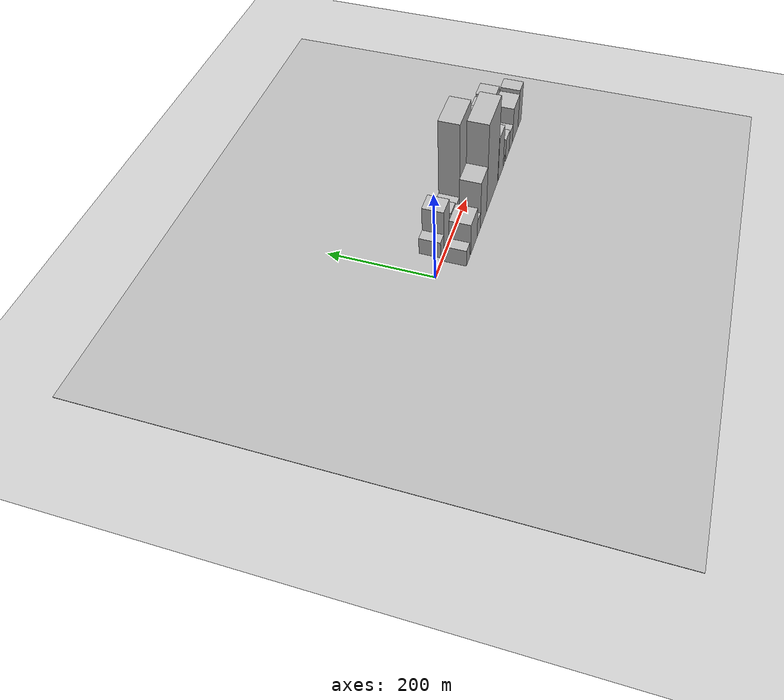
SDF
<?xml version="1.0" encoding="utf-8"?>

<sdf version="1.6">

   <world name="default">

      <gui fullscreen="0">

         <camera name="user_camera">

            <pose>-15 0 4.57585 0 0 0</pose>

            <view_controller>orbit</view_controller>

         </camera>

      </gui>

      <scene>

         <sky>

           <clouds>

             <speed>12</speed>

           </clouds>

         </sky>

         <ambient>0.4 0.4 0.4 1</ambient>

         <background>0.7 0.7 0.7 1</background>

         <shadows>1</shadows>

      </scene>

      <gravity>0 0 -9.8066</gravity>

      <magnetic_field>6e-06 2.3e-05 -4.2e-05</magnetic_field>

      <physics default="0" name="default_physics" type="ode">

         <ode>

            <solver>

               <type>quick</type>

               <iters>10</iters>

               <sor>1.0</sor>

               <use_dynamic_moi_rescaling>0</use_dynamic_moi_rescaling>

            </solver>

            <constraints>

               <cfm>0</cfm>

               <erp>0.2</erp>

               <contact_max_correcting_vel>100</contact_max_correcting_vel>

               <contact_surface_layer>0.001</contact_surface_layer>

            </constraints>

         </ode>

         <max_step_size>0.004</max_step_size>

         <real_time_factor>1</real_time_factor>

         <real_time_update_rate>250</real_time_update_rate>

      </physics>

      <light name="sun" type="directional">

         <cast_shadows>1</cast_shadows>

         <pose>0 0 10 0 0 0</pose>

         <diffuse>0.8 0.8 0.8 1</diffuse>

         <specular>0.2 0.2 0.2 1</specular>

         <attenuation>

            <range>1000</range>

            <constant>0.9</constant>

            <linear>0.01</linear>

            <quadratic>0.001</quadratic>

         </attenuation>

         <direction>-0.5 0.1 -0.9</direction>

      </light>

      <include>

         <name>ground_plane_1</name>

         <uri>model://HANNAS_ground_plane</uri>

         <pose>0 0 0  0 0 0</pose>

      </include>

      <include>

         <name>ground_plane_2</name>

         <uri>model://HANNAS_ground_plane</uri>

         <pose>100 0 0  0 0 0</pose>

      </include>

      <model name="building_1">

         <static>1</static>

         <pose frame="">56.5789 24.5000 0 0.000000 0.000000 1.570796</pose>

         <link name="link">

            <pose frame="">0 0 19.50 0 0 0</pose>

            <collision name="collision">

               <geometry>

                  <box>

                     <size>40.0000 21.1579 39.0000</size>

                  </box>

               </geometry>

               <max_contacts>10</max_contacts>

               <surface>

                  <contact>

                     <ode/>

                  </contact>

                  <bounce/>

                  <friction>

                     <torsional>

                        <ode/>

                     </torsional>

                     <ode/>

                  </friction>

               </surface>

            </collision>

            <visual name="visual">

               <cast_shadows>0</cast_shadows>

               <geometry>

                  <box>

                     <size>40.0000 21.1579 39.0000</size>

                  </box>

               </geometry>

               <material>

                  <script>

                     <uri>model://HANNAS_wall/materials/scripts</uri>

                     <uri>model://HANNAS_wall/materials/textures</uri>

                     <name>vrc/HANNAS_wall</name>

                  </script>

               </material>

            </visual>

            <self_collide>0</self_collide>

            <enable_wind>0</enable_wind>

            <kinematic>0</kinematic>

         </link>

      </model>

      <model name="building_2">

         <static>1</static>

         <pose frame="">84.7303 24.5000 0 0.000000 0.000000 1.570796</pose>

         <link name="link">

            <pose frame="">0 0 46.50 0 0 0</pose>

            <collision name="collision">

               <geometry>

                  <box>

                     <size>40.0000 35.1449 93.0000</size>

                  </box>

               </geometry>

               <max_contacts>10</max_contacts>

               <surface>

                  <contact>

                     <ode/>

                  </contact>

                  <bounce/>

                  <friction>

                     <torsional>

                        <ode/>

                     </torsional>

                     <ode/>

                  </friction>

               </surface>

            </collision>

            <visual name="visual">

               <cast_shadows>0</cast_shadows>

               <geometry>

                  <box>

                     <size>40.0000 35.1449 93.0000</size>

                  </box>

               </geometry>

               <material>

                  <script>

                     <uri>model://HANNAS_wall/materials/scripts</uri>

                     <uri>model://HANNAS_wall/materials/textures</uri>

                     <name>vrc/HANNAS_wall</name>

                  </script>

               </material>

            </visual>

            <self_collide>0</self_collide>

            <enable_wind>0</enable_wind>

            <kinematic>0</kinematic>

         </link>

      </model>

      <model name="building_3">

         <static>1</static>

         <pose frame="">106.9715 24.5000 0 0.000000 0.000000 1.570796</pose>

         <link name="link">

            <pose frame="">0 0 10.50 0 0 0</pose>

            <collision name="collision">

               <geometry>

                  <box>

                     <size>40.0000 9.3375 21.0000</size>

                  </box>

               </geometry>

               <max_contacts>10</max_contacts>

               <surface>

                  <contact>

                     <ode/>

                  </contact>

                  <bounce/>

                  <friction>

                     <torsional>

                        <ode/>

                     </torsional>

                     <ode/>

                  </friction>

               </surface>

            </collision>

            <visual name="visual">

               <cast_shadows>0</cast_shadows>

               <geometry>

                  <box>

                     <size>40.0000 9.3375 21.0000</size>

                  </box>

               </geometry>

               <material>

                  <script>

                     <uri>model://HANNAS_wall/materials/scripts</uri>

                     <uri>model://HANNAS_wall/materials/textures</uri>

                     <name>vrc/HANNAS_wall</name>

                  </script>

               </material>

            </visual>

            <self_collide>0</self_collide>

            <enable_wind>0</enable_wind>

            <kinematic>0</kinematic>

         </link>

      </model>

      <model name="building_4">

         <static>1</static>

         <pose frame="">125.9416 24.5000 0 0.000000 0.000000 1.570796</pose>

         <link name="link">

            <pose frame="">0 0 24.00 0 0 0</pose>

            <collision name="collision">

               <geometry>

                  <box>

                     <size>40.0000 28.6027 48.0000</size>

                  </box>

               </geometry>

               <max_contacts>10</max_contacts>

               <surface>

                  <contact>

                     <ode/>

                  </contact>

                  <bounce/>

                  <friction>

                     <torsional>

                        <ode/>

                     </torsional>

                     <ode/>

                  </friction>

               </surface>

            </collision>

            <visual name="visual">

               <cast_shadows>0</cast_shadows>

               <geometry>

                  <box>

                     <size>40.0000 28.6027 48.0000</size>

                  </box>

               </geometry>

               <material>

                  <script>

                     <uri>model://HANNAS_wall/materials/scripts</uri>

                     <uri>model://HANNAS_wall/materials/textures</uri>

                     <name>vrc/HANNAS_wall</name>

                  </script>

               </material>

            </visual>

            <self_collide>0</self_collide>

            <enable_wind>0</enable_wind>

            <kinematic>0</kinematic>

         </link>

      </model>

      <model name="building_5">

         <static>1</static>

         <pose frame="">157.6252 24.5000 0 0.000000 0.000000 1.570796</pose>

         <link name="link">

            <pose frame="">0 0 18.00 0 0 0</pose>

            <collision name="collision">

               <geometry>

                  <box>

                     <size>40.0000 20.7644 36.0000</size>

                  </box>

               </geometry>

               <max_contacts>10</max_contacts>

               <surface>

                  <contact>

                     <ode/>

                  </contact>

                  <bounce/>

                  <friction>

                     <torsional>

                        <ode/>

                     </torsional>

                     <ode/>

                  </friction>

               </surface>

            </collision>

            <visual name="visual">

               <cast_shadows>0</cast_shadows>

               <geometry>

                  <box>

                     <size>40.0000 20.7644 36.0000</size>

                  </box>

               </geometry>

               <material>

                  <script>

                     <uri>model://HANNAS_wall/materials/scripts</uri>

                     <uri>model://HANNAS_wall/materials/textures</uri>

                     <name>vrc/HANNAS_wall</name>

                  </script>

               </material>

            </visual>

            <self_collide>0</self_collide>

            <enable_wind>0</enable_wind>

            <kinematic>0</kinematic>

         </link>

      </model>

      <model name="building_6">

         <static>1</static>

         <pose frame="">203.3372 24.5000 0 0.000000 0.000000 1.570796</pose>

         <link name="link">

            <pose frame="">0 0 103.50 0 0 0</pose>

            <collision name="collision">

               <geometry>

                  <box>

                     <size>40.0000 70.6595 207.0000</size>

                  </box>

               </geometry>

               <max_contacts>10</max_contacts>

               <surface>

                  <contact>

                     <ode/>

                  </contact>

                  <bounce/>

                  <friction>

                     <torsional>

                        <ode/>

                     </torsional>

                     <ode/>

                  </friction>

               </surface>

            </collision>

            <visual name="visual">

               <cast_shadows>0</cast_shadows>

               <geometry>

                  <box>

                     <size>40.0000 70.6595 207.0000</size>

                  </box>

               </geometry>

               <material>

                  <script>

                     <uri>model://HANNAS_wall/materials/scripts</uri>

                     <uri>model://HANNAS_wall/materials/textures</uri>

                     <name>vrc/HANNAS_wall</name>

                  </script>

               </material>

            </visual>

            <self_collide>0</self_collide>

            <enable_wind>0</enable_wind>

            <kinematic>0</kinematic>

         </link>

      </model>

      <model name="building_7">

         <static>1</static>

         <pose frame="">253.1408 24.5000 0 0.000000 0.000000 1.570796</pose>

         <link name="link">

            <pose frame="">0 0 48.00 0 0 0</pose>

            <collision name="collision">

               <geometry>

                  <box>

                     <size>40.0000 28.9477 96.0000</size>

                  </box>

               </geometry>

               <max_contacts>10</max_contacts>

               <surface>

                  <contact>

                     <ode/>

                  </contact>

                  <bounce/>

                  <friction>

                     <torsional>

                        <ode/>

                     </torsional>

                     <ode/>

                  </friction>

               </surface>

            </collision>

            <visual name="visual">

               <cast_shadows>0</cast_shadows>

               <geometry>

                  <box>

                     <size>40.0000 28.9477 96.0000</size>

                  </box>

               </geometry>

               <material>

                  <script>

                     <uri>model://HANNAS_wall/materials/scripts</uri>

                     <uri>model://HANNAS_wall/materials/textures</uri>

                     <name>vrc/HANNAS_wall</name>

                  </script>

               </material>

            </visual>

            <self_collide>0</self_collide>

            <enable_wind>0</enable_wind>

            <kinematic>0</kinematic>

         </link>

      </model>

      <model name="building_8">

         <static>1</static>

         <pose frame="">288.7984 24.5000 0 0.000000 0.000000 1.570796</pose>

         <link name="link">

            <pose frame="">0 0 63.00 0 0 0</pose>

            <collision name="collision">

               <geometry>

                  <box>

                     <size>40.0000 42.3676 126.0000</size>

                  </box>

               </geometry>

               <max_contacts>10</max_contacts>

               <surface>

                  <contact>

                     <ode/>

                  </contact>

                  <bounce/>

                  <friction>

                     <torsional>

                        <ode/>

                     </torsional>

                     <ode/>

                  </friction>

               </surface>

            </collision>

            <visual name="visual">

               <cast_shadows>0</cast_shadows>

               <geometry>

                  <box>

                     <size>40.0000 42.3676 126.0000</size>

                  </box>

               </geometry>

               <material>

                  <script>

                     <uri>model://HANNAS_wall/materials/scripts</uri>

                     <uri>model://HANNAS_wall/materials/textures</uri>

                     <name>vrc/HANNAS_wall</name>

                  </script>

               </material>

            </visual>

            <self_collide>0</self_collide>

            <enable_wind>0</enable_wind>

            <kinematic>0</kinematic>

         </link>

      </model>

      <model name="building_9">

         <static>1</static>

         <pose frame="">314.4050 24.5000 0 0.000000 0.000000 1.570796</pose>

         <link name="link">

            <pose frame="">0 0 9.00 0 0 0</pose>

            <collision name="collision">

               <geometry>

                  <box>

                     <size>40.0000 8.8455 18.0000</size>

                  </box>

               </geometry>

               <max_contacts>10</max_contacts>

               <surface>

                  <contact>

                     <ode/>

                  </contact>

                  <bounce/>

                  <friction>

                     <torsional>

                        <ode/>

                     </torsional>

                     <ode/>

                  </friction>

               </surface>

            </collision>

            <visual name="visual">

               <cast_shadows>0</cast_shadows>

               <geometry>

                  <box>

                     <size>40.0000 8.8455 18.0000</size>

                  </box>

               </geometry>

               <material>

                  <script>

                     <uri>model://HANNAS_wall/materials/scripts</uri>

                     <uri>model://HANNAS_wall/materials/textures</uri>

                     <name>vrc/HANNAS_wall</name>

                  </script>

               </material>

            </visual>

            <self_collide>0</self_collide>

            <enable_wind>0</enable_wind>

            <kinematic>0</kinematic>

         </link>

      </model>

      <model name="building_10">

         <static>1</static>

         <pose frame="">330.9381 24.5000 0 0.000000 0.000000 1.570796</pose>

         <link name="link">

            <pose frame="">0 0 22.50 0 0 0</pose>

            <collision name="collision">

               <geometry>

                  <box>

                     <size>40.0000 24.2208 45.0000</size>

                  </box>

               </geometry>

               <max_contacts>10</max_contacts>

               <surface>

                  <contact>

                     <ode/>

                  </contact>

                  <bounce/>

                  <friction>

                     <torsional>

                        <ode/>

                     </torsional>

                     <ode/>

                  </friction>

               </surface>

            </collision>

            <visual name="visual">

               <cast_shadows>0</cast_shadows>

               <geometry>

                  <box>

                     <size>40.0000 24.2208 45.0000</size>

                  </box>

               </geometry>

               <material>

                  <script>

                     <uri>model://HANNAS_wall/materials/scripts</uri>

                     <uri>model://HANNAS_wall/materials/textures</uri>

                     <name>vrc/HANNAS_wall</name>

                  </script>

               </material>

            </visual>

            <self_collide>0</self_collide>

            <enable_wind>0</enable_wind>

            <kinematic>0</kinematic>

         </link>

      </model>

      <model name="building_11">

         <static>1</static>

         <pose frame="">364.2651 24.5000 0 0.000000 0.000000 1.570796</pose>

         <link name="link">

            <pose frame="">0 0 37.50 0 0 0</pose>

            <collision name="collision">

               <geometry>

                  <box>

                     <size>40.0000 42.4332 75.0000</size>

                  </box>

               </geometry>

               <max_contacts>10</max_contacts>

               <surface>

                  <contact>

                     <ode/>

                  </contact>

                  <bounce/>

                  <friction>

                     <torsional>

                        <ode/>

                     </torsional>

                     <ode/>

                  </friction>

               </surface>

            </collision>

            <visual name="visual">

               <cast_shadows>0</cast_shadows>

               <geometry>

                  <box>

                     <size>40.0000 42.4332 75.0000</size>

                  </box>

               </geometry>

               <material>

                  <script>

                     <uri>model://HANNAS_wall/materials/scripts</uri>

                     <uri>model://HANNAS_wall/materials/textures</uri>

                     <name>vrc/HANNAS_wall</name>

                  </script>

               </material>

            </visual>

            <self_collide>0</self_collide>

            <enable_wind>0</enable_wind>

            <kinematic>0</kinematic>

         </link>

      </model>

      <model name="building_12">

         <static>1</static>

         <pose frame="">403.4173 24.5000 0 0.000000 0.000000 1.570796</pose>

         <link name="link">

            <pose frame="">0 0 34.50 0 0 0</pose>

            <collision name="collision">

               <geometry>

                  <box>

                     <size>40.0000 35.8711 69.0000</size>

                  </box>

               </geometry>

               <max_contacts>10</max_contacts>

               <surface>

                  <contact>

                     <ode/>

                  </contact>

                  <bounce/>

                  <friction>

                     <torsional>

                        <ode/>

                     </torsional>

                     <ode/>

                  </friction>

               </surface>

            </collision>

            <visual name="visual">

               <cast_shadows>0</cast_shadows>

               <geometry>

                  <box>

                     <size>40.0000 35.8711 69.0000</size>

                  </box>

               </geometry>

               <material>

                  <script>

                     <uri>model://HANNAS_wall/materials/scripts</uri>

                     <uri>model://HANNAS_wall/materials/textures</uri>

                     <name>vrc/HANNAS_wall</name>

                  </script>

               </material>

            </visual>

            <self_collide>0</self_collide>

            <enable_wind>0</enable_wind>

            <kinematic>0</kinematic>

         </link>

      </model>

      <model name="building_13">

         <static>1</static>

         <pose frame="">444.4437 24.5000 0 0.000000 0.000000 1.570796</pose>

         <link name="link">

            <pose frame="">0 0 36.00 0 0 0</pose>

            <collision name="collision">

               <geometry>

                  <box>

                     <size>40.0000 36.1818 72.0000</size>

                  </box>

               </geometry>

               <max_contacts>10</max_contacts>

               <surface>

                  <contact>

                     <ode/>

                  </contact>

                  <bounce/>

                  <friction>

                     <torsional>

                        <ode/>

                     </torsional>

                     <ode/>

                  </friction>

               </surface>

            </collision>

            <visual name="visual">

               <cast_shadows>0</cast_shadows>

               <geometry>

                  <box>

                     <size>40.0000 36.1818 72.0000</size>

                  </box>

               </geometry>

               <material>

                  <script>

                     <uri>model://HANNAS_wall/materials/scripts</uri>

                     <uri>model://HANNAS_wall/materials/textures</uri>

                     <name>vrc/HANNAS_wall</name>

                  </script>

               </material>

            </visual>

            <self_collide>0</self_collide>

            <enable_wind>0</enable_wind>

            <kinematic>0</kinematic>

         </link>

      </model>

      <model name="building_14">

         <static>1</static>

         <pose frame="">50.6177 -24.5000 0 0.000000 0.000000 1.570796</pose>

         <link name="link">

            <pose frame="">0 0 19.50 0 0 0</pose>

            <collision name="collision">

               <geometry>

                  <box>

                     <size>40.0000 21.2354 39.0000</size>

                  </box>

               </geometry>

               <max_contacts>10</max_contacts>

               <surface>

                  <contact>

                     <ode/>

                  </contact>

                  <bounce/>

                  <friction>

                     <torsional>

                        <ode/>

                     </torsional>

                     <ode/>

                  </friction>

               </surface>

            </collision>

            <visual name="visual">

               <cast_shadows>0</cast_shadows>

               <geometry>

                  <box>

                     <size>40.0000 21.2354 39.0000</size>

                  </box>

               </geometry>

               <material>

                  <script>

                     <uri>model://HANNAS_wall/materials/scripts</uri>

                     <uri>model://HANNAS_wall/materials/textures</uri>

                     <name>vrc/HANNAS_wall</name>

                  </script>

               </material>

            </visual>

            <self_collide>0</self_collide>

            <enable_wind>0</enable_wind>

            <kinematic>0</kinematic>

         </link>

      </model>

      <model name="building_15">

         <static>1</static>

         <pose frame="">90.2534 -24.5000 0 0.000000 0.000000 1.570796</pose>

         <link name="link">

            <pose frame="">0 0 37.50 0 0 0</pose>

            <collision name="collision">

               <geometry>

                  <box>

                     <size>40.0000 44.0358 75.0000</size>

                  </box>

               </geometry>

               <max_contacts>10</max_contacts>

               <surface>

                  <contact>

                     <ode/>

                  </contact>

                  <bounce/>

                  <friction>

                     <torsional>

                        <ode/>

                     </torsional>

                     <ode/>

                  </friction>

               </surface>

            </collision>

            <visual name="visual">

               <cast_shadows>0</cast_shadows>

               <geometry>

                  <box>

                     <size>40.0000 44.0358 75.0000</size>

                  </box>

               </geometry>

               <material>

                  <script>

                     <uri>model://HANNAS_wall/materials/scripts</uri>

                     <uri>model://HANNAS_wall/materials/textures</uri>

                     <name>vrc/HANNAS_wall</name>

                  </script>

               </material>

            </visual>

            <self_collide>0</self_collide>

            <enable_wind>0</enable_wind>

            <kinematic>0</kinematic>

         </link>

      </model>

      <model name="building_16">

         <static>1</static>

         <pose frame="">122.9438 -24.5000 0 0.000000 0.000000 1.570796</pose>

         <link name="link">

            <pose frame="">0 0 21.00 0 0 0</pose>

            <collision name="collision">

               <geometry>

                  <box>

                     <size>40.0000 21.3450 42.0000</size>

                  </box>

               </geometry>

               <max_contacts>10</max_contacts>

               <surface>

                  <contact>

                     <ode/>

                  </contact>

                  <bounce/>

                  <friction>

                     <torsional>

                        <ode/>

                     </torsional>

                     <ode/>

                  </friction>

               </surface>

            </collision>

            <visual name="visual">

               <cast_shadows>0</cast_shadows>

               <geometry>

                  <box>

                     <size>40.0000 21.3450 42.0000</size>

                  </box>

               </geometry>

               <material>

                  <script>

                     <uri>model://HANNAS_wall/materials/scripts</uri>

                     <uri>model://HANNAS_wall/materials/textures</uri>

                     <name>vrc/HANNAS_wall</name>

                  </script>

               </material>

            </visual>

            <self_collide>0</self_collide>

            <enable_wind>0</enable_wind>

            <kinematic>0</kinematic>

         </link>

      </model>

      <model name="building_17">

         <static>1</static>

         <pose frame="">155.9370 -24.5000 0 0.000000 0.000000 1.570796</pose>

         <link name="link">

            <pose frame="">0 0 57.00 0 0 0</pose>

            <collision name="collision">

               <geometry>

                  <box>

                     <size>40.0000 44.6416 114.0000</size>

                  </box>

               </geometry>

               <max_contacts>10</max_contacts>

               <surface>

                  <contact>

                     <ode/>

                  </contact>

                  <bounce/>

                  <friction>

                     <torsional>

                        <ode/>

                     </torsional>

                     <ode/>

                  </friction>

               </surface>

            </collision>

            <visual name="visual">

               <cast_shadows>0</cast_shadows>

               <geometry>

                  <box>

                     <size>40.0000 44.6416 114.0000</size>

                  </box>

               </geometry>

               <material>

                  <script>

                     <uri>model://HANNAS_wall/materials/scripts</uri>

                     <uri>model://HANNAS_wall/materials/textures</uri>

                     <name>vrc/HANNAS_wall</name>

                  </script>

               </material>

            </visual>

            <self_collide>0</self_collide>

            <enable_wind>0</enable_wind>

            <kinematic>0</kinematic>

         </link>

      </model>

      <model name="building_18">

         <static>1</static>

         <pose frame="">220.2204 -24.5000 0 0.000000 0.000000 1.570796</pose>

         <link name="link">

            <pose frame="">0 0 105.00 0 0 0</pose>

            <collision name="collision">

               <geometry>

                  <box>

                     <size>40.0000 83.9252 210.0000</size>

                  </box>

               </geometry>

               <max_contacts>10</max_contacts>

               <surface>

                  <contact>

                     <ode/>

                  </contact>

                  <bounce/>

                  <friction>

                     <torsional>

                        <ode/>

                     </torsional>

                     <ode/>

                  </friction>

               </surface>

            </collision>

            <visual name="visual">

               <cast_shadows>0</cast_shadows>

               <geometry>

                  <box>

                     <size>40.0000 83.9252 210.0000</size>

                  </box>

               </geometry>

               <material>

                  <script>

                     <uri>model://HANNAS_wall/materials/scripts</uri>

                     <uri>model://HANNAS_wall/materials/textures</uri>

                     <name>vrc/HANNAS_wall</name>

                  </script>

               </material>

            </visual>

            <self_collide>0</self_collide>

            <enable_wind>0</enable_wind>

            <kinematic>0</kinematic>

         </link>

      </model>

      <model name="building_19">

         <static>1</static>

         <pose frame="">285.4245 -24.5000 0 0.000000 0.000000 1.570796</pose>

         <link name="link">

            <pose frame="">0 0 54.00 0 0 0</pose>

            <collision name="collision">

               <geometry>

                  <box>

                     <size>40.0000 40.4829 108.0000</size>

                  </box>

               </geometry>

               <max_contacts>10</max_contacts>

               <surface>

                  <contact>

                     <ode/>

                  </contact>

                  <bounce/>

                  <friction>

                     <torsional>

                        <ode/>

                     </torsional>

                     <ode/>

                  </friction>

               </surface>

            </collision>

            <visual name="visual">

               <cast_shadows>0</cast_shadows>

               <geometry>

                  <box>

                     <size>40.0000 40.4829 108.0000</size>

                  </box>

               </geometry>

               <material>

                  <script>

                     <uri>model://HANNAS_wall/materials/scripts</uri>

                     <uri>model://HANNAS_wall/materials/textures</uri>

                     <name>vrc/HANNAS_wall</name>

                  </script>

               </material>

            </visual>

            <self_collide>0</self_collide>

            <enable_wind>0</enable_wind>

            <kinematic>0</kinematic>

         </link>

      </model>

      <model name="building_20">

         <static>1</static>

         <pose frame="">311.4000 -24.5000 0 0.000000 0.000000 1.570796</pose>

         <link name="link">

            <pose frame="">0 0 12.00 0 0 0</pose>

            <collision name="collision">

               <geometry>

                  <box>

                     <size>40.0000 11.4683 24.0000</size>

                  </box>

               </geometry>

               <max_contacts>10</max_contacts>

               <surface>

                  <contact>

                     <ode/>

                  </contact>

                  <bounce/>

                  <friction>

                     <torsional>

                        <ode/>

                     </torsional>

                     <ode/>

                  </friction>

               </surface>

            </collision>

            <visual name="visual">

               <cast_shadows>0</cast_shadows>

               <geometry>

                  <box>

                     <size>40.0000 11.4683 24.0000</size>

                  </box>

               </geometry>

               <material>

                  <script>

                     <uri>model://HANNAS_wall/materials/scripts</uri>

                     <uri>model://HANNAS_wall/materials/textures</uri>

                     <name>vrc/HANNAS_wall</name>

                  </script>

               </material>

            </visual>

            <self_collide>0</self_collide>

            <enable_wind>0</enable_wind>

            <kinematic>0</kinematic>

         </link>

      </model>

      <model name="building_21">

         <static>1</static>

         <pose frame="">339.1826 -24.5000 0 0.000000 0.000000 1.570796</pose>

         <link name="link">

            <pose frame="">0 0 28.50 0 0 0</pose>

            <collision name="collision">

               <geometry>

                  <box>

                     <size>40.0000 30.0969 57.0000</size>

                  </box>

               </geometry>

               <max_contacts>10</max_contacts>

               <surface>

                  <contact>

                     <ode/>

                  </contact>

                  <bounce/>

                  <friction>

                     <torsional>

                        <ode/>

                     </torsional>

                     <ode/>

                  </friction>

               </surface>

            </collision>

            <visual name="visual">

               <cast_shadows>0</cast_shadows>

               <geometry>

                  <box>

                     <size>40.0000 30.0969 57.0000</size>

                  </box>

               </geometry>

               <material>

                  <script>

                     <uri>model://HANNAS_wall/materials/scripts</uri>

                     <uri>model://HANNAS_wall/materials/textures</uri>

                     <name>vrc/HANNAS_wall</name>

                  </script>

               </material>

            </visual>

            <self_collide>0</self_collide>

            <enable_wind>0</enable_wind>

            <kinematic>0</kinematic>

         </link>

      </model>

      <model name="building_22">

         <static>1</static>

         <pose frame="">368.0354 -24.5000 0 0.000000 0.000000 1.570796</pose>

         <link name="link">

            <pose frame="">0 0 24.00 0 0 0</pose>

            <collision name="collision">

               <geometry>

                  <box>

                     <size>40.0000 27.6086 48.0000</size>

                  </box>

               </geometry>

               <max_contacts>10</max_contacts>

               <surface>

                  <contact>

                     <ode/>

                  </contact>

                  <bounce/>

                  <friction>

                     <torsional>

                        <ode/>

                     </torsional>

                     <ode/>

                  </friction>

               </surface>

            </collision>

            <visual name="visual">

               <cast_shadows>0</cast_shadows>

               <geometry>

                  <box>

                     <size>40.0000 27.6086 48.0000</size>

                  </box>

               </geometry>

               <material>

                  <script>

                     <uri>model://HANNAS_wall/materials/scripts</uri>

                     <uri>model://HANNAS_wall/materials/textures</uri>

                     <name>vrc/HANNAS_wall</name>

                  </script>

               </material>

            </visual>

            <self_collide>0</self_collide>

            <enable_wind>0</enable_wind>

            <kinematic>0</kinematic>

         </link>

      </model>

      <model name="building_23">

         <static>1</static>

         <pose frame="">405.8657 -24.5000 0 0.000000 0.000000 1.570796</pose>

         <link name="link">

            <pose frame="">0 0 43.50 0 0 0</pose>

            <collision name="collision">

               <geometry>

                  <box>

                     <size>40.0000 48.0521 87.0000</size>

                  </box>

               </geometry>

               <max_contacts>10</max_contacts>

               <surface>

                  <contact>

                     <ode/>

                  </contact>

                  <bounce/>

                  <friction>

                     <torsional>

                        <ode/>

                     </torsional>

                     <ode/>

                  </friction>

               </surface>

            </collision>

            <visual name="visual">

               <cast_shadows>0</cast_shadows>

               <geometry>

                  <box>

                     <size>40.0000 48.0521 87.0000</size>

                  </box>

               </geometry>

               <material>

                  <script>

                     <uri>model://HANNAS_wall/materials/scripts</uri>

                     <uri>model://HANNAS_wall/materials/textures</uri>

                     <name>vrc/HANNAS_wall</name>

                  </script>

               </material>

            </visual>

            <self_collide>0</self_collide>

            <enable_wind>0</enable_wind>

            <kinematic>0</kinematic>

         </link>

      </model>

      <model name="building_24">

         <static>1</static>

         <pose frame="">444.8008 -24.5000 0 0.000000 0.000000 1.570796</pose>

         <link name="link">

            <pose frame="">0 0 48.00 0 0 0</pose>

            <collision name="collision">

               <geometry>

                  <box>

                     <size>40.0000 29.8180 96.0000</size>

                  </box>

               </geometry>

               <max_contacts>10</max_contacts>

               <surface>

                  <contact>

                     <ode/>

                  </contact>

                  <bounce/>

                  <friction>

                     <torsional>

                        <ode/>

                     </torsional>

                     <ode/>

                  </friction>

               </surface>

            </collision>

            <visual name="visual">

               <cast_shadows>0</cast_shadows>

               <geometry>

                  <box>

                     <size>40.0000 29.8180 96.0000</size>

                  </box>

               </geometry>

               <material>

                  <script>

                     <uri>model://HANNAS_wall/materials/scripts</uri>

                     <uri>model://HANNAS_wall/materials/textures</uri>

                     <name>vrc/HANNAS_wall</name>

                  </script>

               </material>

            </visual>

            <self_collide>0</self_collide>

            <enable_wind>0</enable_wind>

            <kinematic>0</kinematic>

         </link>

      </model>

   </world>

</sdf>

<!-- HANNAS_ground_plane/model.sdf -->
<sdf version="1.4">
<model name="HANNAS_ground_plane">
  <static>true</static>
    <link name="link">
      <collision name="collision">
        <geometry>
          <plane>
            <normal>0 0 1</normal>
            <size>1000 1000</size>
          </plane>
        </geometry>
        <surface>
          <friction>
            <ode>
              <mu>100</mu>
              <mu2>50</mu2>
            </ode>
          </friction>
        </surface>
      </collision>
      <visual name="visual">
        <cast_shadows>false</cast_shadows>
        <geometry>
          <plane>
            <normal>0 0 1</normal>
            <size>1000 1000</size>
          </plane>
        </geometry>
        <material>
          <script>
            <uri>model://HANNAS_ground_plane/materials/scripts/HANNAS_ground_plane.material</uri>
	    <uri>model://HANNAS_ground_plane/materials/textures</uri>
            <name>HANNASGroundPlane/Image</name>
          </script>
        </material>
      </visual>
    </link>
  </model>
</sdf>
